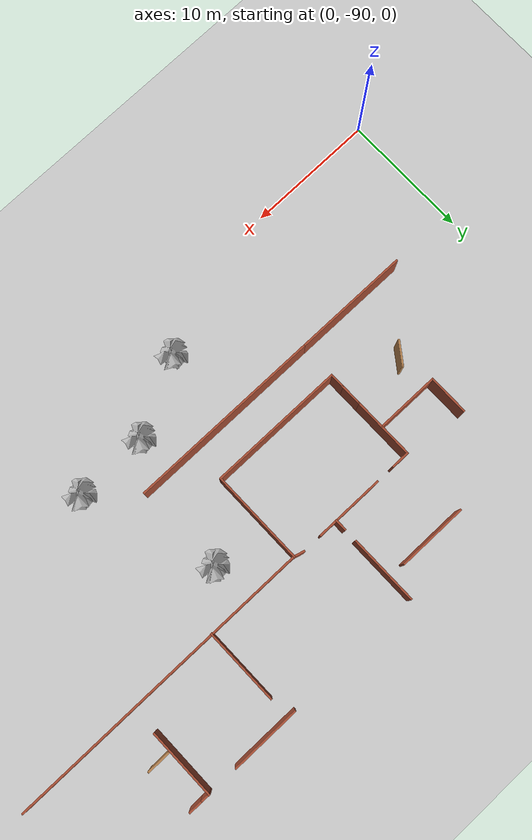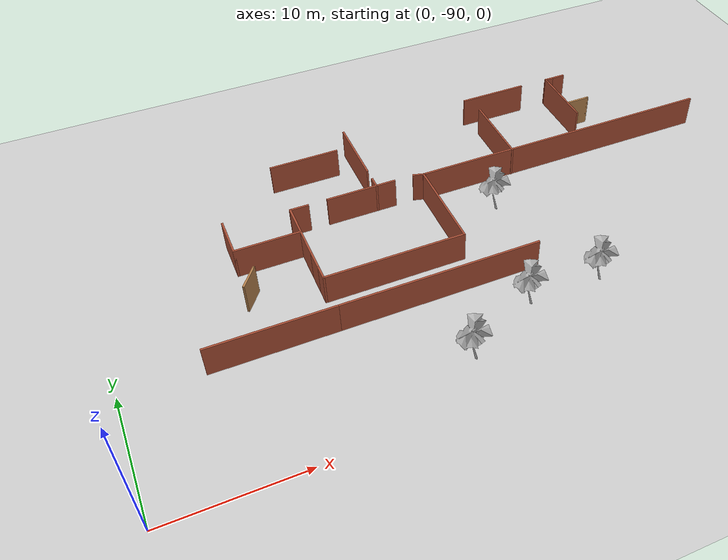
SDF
<sdf version="1.6">
 <world name="default">
  <model name="map_palace_v2_model_1_0">
   <pose>-3.1e-05 -55 0 0 -0 3.14</pose>
   <link name="Wall_10">
    <collision name="Wall_10_Collision">
     <geometry><box><size>7.5 0.15 2.5</size></box></geometry>
     <pose>0 0 1.25 0 -0 0</pose>
    </collision>
    <visual name="Wall_10_Visual">
     <pose>0 0 1.25 0 -0 0</pose>
     <geometry><box><size>7.5 0.15 2.5</size></box></geometry>
     <material>
      <script><uri>file://media/materials/scripts/gazebo.material</uri><name>Gazebo/Bricks</name></script>
      <ambient>1 1 1 1</ambient>
     </material>
     <meta><layer>0</layer></meta>
    </visual>
    <pose>-25.5193 18.9225 0 0 -0 -1.5708</pose>
   </link>
   <link name="Wall_11">
    <collision name="Wall_11_Collision">
     <geometry><box><size>24.75 0.15 2.5</size></box></geometry>
     <pose>0 0 1.25 0 -0 0</pose>
    </collision>
    <visual name="Wall_11_Visual">
     <pose>0 0 1.25 0 -0 0</pose>
     <geometry><box><size>24.75 0.15 2.5</size></box></geometry>
     <material>
      <script><uri>file://media/materials/scripts/gazebo.material</uri><name>Gazebo/Bricks</name></script>
      <ambient>1 1 1 1</ambient>
     </material>
     <meta><layer>0</layer></meta>
    </visual>
    <pose>-37.8193 15.2475 0 0 -0 3.14159</pose>
   </link>
   <link name="Wall_196">
    <collision name="Wall_196_Collision">
     <geometry><box><size>5.5 0.15 2.5</size></box></geometry>
     <pose>0 0 1.25 0 -0 0</pose>
    </collision>
    <visual name="Wall_196_Visual">
     <pose>0 0 1.25 0 -0 0</pose>
     <geometry><box><size>5.5 0.15 2.5</size></box></geometry>
     <material>
      <script><uri>file://media/materials/scripts/gazebo.material</uri><name>Gazebo/Bricks</name></script>
      <ambient>1 1 1 1</ambient>
     </material>
     <meta><layer>0</layer></meta>
    </visual>
    <pose>-17.7024 9.73922 0 0 -0 0</pose>
   </link>
   <link name="Wall_200">
    <collision name="Wall_200_Collision">
     <geometry><box><size>5 0.15 2.5</size></box></geometry>
     <pose>0 0 1.25 0 -0 0</pose>
    </collision>
    <visual name="Wall_200_Visual">
     <pose>0 0 1.25 0 -0 0</pose>
     <geometry><box><size>5 0.15 2.5</size></box></geometry>
     <material>
      <script><uri>file://media/materials/scripts/gazebo.material</uri><name>Gazebo/Bricks</name></script>
      <ambient>1 1 1 1</ambient>
     </material>
     <meta><layer>0</layer></meta>
    </visual>
    <pose>-12.4131 17.5809 0 0 -0 0</pose>
   </link>
   <link name="Wall_201">
    <collision name="Wall_201_Collision">
     <geometry><box><size>3.25 0.15 2.5</size></box></geometry>
     <pose>0 0 1.25 0 -0 0</pose>
    </collision>
    <visual name="Wall_201_Visual">
     <pose>0 0 1.25 0 -0 0</pose>
     <geometry><box><size>3.25 0.15 2.5</size></box></geometry>
     <material>
      <script><uri>file://media/materials/scripts/gazebo.material</uri><name>Gazebo/Bricks</name></script>
      <ambient>1 1 1 1</ambient>
     </material>
     <meta><layer>0</layer></meta>
    </visual>
    <pose>-9.98806 16.0309 0 0 -0 -1.5708</pose>
   </link>
   <link name="Wall_44">
    <collision name="Wall_44_Collision">
     <geometry><box><size>15.25 0.15 2.5</size></box></geometry>
     <pose>0 0 1.25 0 -0 0</pose>
    </collision>
    <visual name="Wall_44_Visual">
     <pose>0 0 1.25 0 -0 0</pose>
     <geometry><box><size>15.25 0.15 2.5</size></box></geometry>
     <material>
      <script><uri>file://media/materials/scripts/gazebo.material</uri><name>Gazebo/Bricks</name></script>
      <ambient>1 1 1 1</ambient>
     </material>
     <meta><layer>0</layer></meta>
    </visual>
    <pose>-22.4693 25.4475 0 0 -0 3.14159</pose>
   </link>
   <link name="Wall_51">
    <collision name="Wall_51_Collision">
     <geometry><box><size>1.25 0.15 2.5</size></box></geometry>
     <pose>0 0 1.25 0 -0 0</pose>
    </collision>
    <visual name="Wall_51_Visual">
     <pose>0 0 1.25 0 -0 0</pose>
     <geometry><box><size>1.25 0.15 2.5</size></box></geometry>
     <material>
      <script><uri>file://media/materials/scripts/gazebo.material</uri><name>Gazebo/Bricks</name></script>
      <ambient>1 1 1 1</ambient>
     </material>
     <meta><layer>0</layer></meta>
    </visual>
    <pose>-14.9193 22.0475 0 0 -0 -1.5708</pose>
   </link>
   <link name="Wall_52">
    <collision name="Wall_52_Collision">
     <geometry><box><size>1.75 0.15 2.5</size></box></geometry>
     <pose>0 0 1.25 0 -0 0</pose>
    </collision>
    <visual name="Wall_52_Visual">
     <pose>0 0 1.25 0 -0 0</pose>
     <geometry><box><size>1.75 0.15 2.5</size></box></geometry>
     <material>
      <script><uri>file://media/materials/scripts/gazebo.material</uri><name>Gazebo/Bricks</name></script>
      <ambient>1 1 1 1</ambient>
     </material>
     <meta><layer>0</layer></meta>
    </visual>
    <pose>-14.9193 20.6975 0 0 -0 -1.5708</pose>
   </link>
   <link name="Wall_53">
    <collision name="Wall_53_Collision">
     <geometry><box><size>5 0.15 2.5</size></box></geometry>
     <pose>0 0 1.25 0 -0 0</pose>
    </collision>
    <visual name="Wall_53_Visual">
     <pose>0 0 1.25 0 -0 0</pose>
     <geometry><box><size>5 0.15 2.5</size></box></geometry>
     <material>
      <script><uri>file://media/materials/scripts/gazebo.material</uri><name>Gazebo/Bricks</name></script>
      <ambient>1 1 1 1</ambient>
     </material>
     <meta><layer>0</layer></meta>
    </visual>
    <pose>-14.9193 17.4725 0 0 -0 -1.5708</pose>
   </link>
   <link name="Wall_54">
    <collision name="Wall_54_Collision">
     <geometry><box><size>1.5 0.15 2.5</size></box></geometry>
     <pose>0 0 1.25 0 -0 0</pose>
    </collision>
    <visual name="Wall_54_Visual">
     <pose>0 0 1.25 0 -0 0</pose>
     <geometry><box><size>1.5 0.15 2.5</size></box></geometry>
     <material>
      <script><uri>file://media/materials/scripts/gazebo.material</uri><name>Gazebo/Bricks</name></script>
      <ambient>1 1 1 1</ambient>
     </material>
     <meta><layer>0</layer></meta>
    </visual>
    <pose>-15.5943 15.0475 0 0 -0 3.14159</pose>
   </link>
   <link name="Wall_58">
    <collision name="Wall_58_Collision">
     <geometry><box><size>5.5 0.15 2.5</size></box></geometry>
     <pose>0 0 1.25 0 -0 0</pose>
    </collision>
    <visual name="Wall_58_Visual">
     <pose>0 0 1.25 0 -0 0</pose>
     <geometry><box><size>5.5 0.15 2.5</size></box></geometry>
     <material>
      <script><uri>file://media/materials/scripts/gazebo.material</uri><name>Gazebo/Bricks</name></script>
      <ambient>1 1 1 1</ambient>
     </material>
     <meta><layer>0</layer></meta>
    </visual>
    <pose>-20.5061 15.044 0 0 -0 3.14159</pose>
   </link>
   <link name="Wall_60">
    <collision name="Wall_60_Collision">
     <geometry><box><size>1 0.15 2.5</size></box></geometry>
     <pose>0 0 1.25 0 -0 0</pose>
    </collision>
    <visual name="Wall_60_Visual">
     <pose>0 0 1.25 0 -0 0</pose>
     <geometry><box><size>1 0.15 2.5</size></box></geometry>
     <material>
      <script><uri>file://media/materials/scripts/gazebo.material</uri><name>Gazebo/Bricks</name></script>
      <ambient>1 1 1 1</ambient>
     </material>
     <meta><layer>0</layer></meta>
    </visual>
    <pose>-25.1916 15.154 0 0 -0 2.87979</pose>
   </link>
   <link name="Wall_66">
    <collision name="Wall_66_Collision">
     <geometry><box><size>5.5 0.15 2.5</size></box></geometry>
     <pose>0 0 1.25 0 -0 0</pose>
    </collision>
    <visual name="Wall_66_Visual">
     <pose>0 0 1.25 0 -0 0</pose>
     <geometry><box><size>5.5 0.15 2.5</size></box></geometry>
     <material>
      <script><uri>file://media/materials/scripts/gazebo.material</uri><name>Gazebo/Bricks</name></script>
      <ambient>1 1 1 1</ambient>
     </material>
     <meta><layer>0</layer></meta>
    </visual>
    <pose>-21.7193 10.4225 0 0 -0 1.5708</pose>
   </link>
   <link name="Wall_68">
    <collision name="Wall_68_Collision">
     <geometry><box><size>1 0.15 2.5</size></box></geometry>
     <pose>0 0 1.25 0 -0 0</pose>
    </collision>
    <visual name="Wall_68_Visual">
     <pose>0 0 1.25 0 -0 0</pose>
     <geometry><box><size>1 0.15 2.5</size></box></geometry>
     <material>
      <script><uri>file://media/materials/scripts/gazebo.material</uri><name>Gazebo/Bricks</name></script>
      <ambient>1 1 1 1</ambient>
     </material>
     <meta><layer>0</layer></meta>
    </visual>
    <pose>-21.7193 14.6225 0 0 -0 1.5708</pose>
   </link>
   <link name="Wall_7">
    <collision name="Wall_7_Collision">
     <geometry><box><size>9.25 0.15 2.5</size></box></geometry>
     <pose>0 0 1.25 0 -0 0</pose>
    </collision>
    <visual name="Wall_7_Visual">
     <pose>0 0 1.25 0 -0 0</pose>
     <geometry><box><size>9.25 0.15 2.5</size></box></geometry>
     <material>
      <script><uri>file://media/materials/scripts/gazebo.material</uri><name>Gazebo/Bricks</name></script>
      <ambient>1 1 1 1</ambient>
     </material>
     <meta><layer>0</layer></meta>
    </visual>
    <pose>-10.3693 25.4475 0 0 -0 3.14159</pose>
   </link>
   <link name="Wall_70">
    <collision name="Wall_70_Collision">
     <geometry><box><size>6 0.15 2.5</size></box></geometry>
     <pose>0 0 1.25 0 -0 0</pose>
    </collision>
    <visual name="Wall_70_Visual">
     <pose>0 0 1.25 0 -0 0</pose>
     <geometry><box><size>6 0.15 2.5</size></box></geometry>
     <material>
      <script><uri>file://media/materials/scripts/gazebo.material</uri><name>Gazebo/Bricks</name></script>
      <ambient>1 1 1 1</ambient>
     </material>
     <meta><layer>0</layer></meta>
    </visual>
    <pose>-33.1638 12.3617 0 0 -0 -1.5708</pose>
   </link>
   <link name="Wall_76">
    <collision name="Wall_76_Collision">
     <geometry><box><size>5.5 0.15 2.5</size></box></geometry>
     <pose>0 0 1.25 0 -0 0</pose>
    </collision>
    <visual name="Wall_76_Visual">
     <pose>0 0 1.25 0 -0 0</pose>
     <geometry><box><size>5.5 0.15 2.5</size></box></geometry>
     <material>
      <script><uri>file://media/materials/scripts/gazebo.material</uri><name>Gazebo/Bricks</name></script>
      <ambient>1 1 1 1</ambient>
     </material>
     <meta><layer>0</layer></meta>
    </visual>
    <pose>-35.2443 7.74746 0 0 -0 3.14159</pose>
   </link>
   <link name="Wall_81">
    <collision name="Wall_81_Collision">
     <geometry><box><size>5.5 0.15 2.5</size></box></geometry>
     <pose>0 0 1.25 0 -0 0</pose>
    </collision>
    <visual name="Wall_81_Visual">
     <pose>0 0 1.25 0 -0 0</pose>
     <geometry><box><size>5.5 0.15 2.5</size></box></geometry>
     <material>
      <script><uri>file://media/materials/scripts/gazebo.material</uri><name>Gazebo/Bricks</name></script>
      <ambient>1 1 1 1</ambient>
     </material>
     <meta><layer>0</layer></meta>
    </visual>
    <pose>-40.3693 10.4225 0 0 -0 1.5708</pose>
   </link>
   <link name="Wall_85">
    <collision name="Wall_85_Collision">
     <geometry><box><size>0.740436 0.15 2.5</size></box></geometry>
     <pose>0 0 1.25 0 -0 0</pose>
    </collision>
    <visual name="Wall_85_Visual">
     <pose>0 0 1.25 0 -0 0</pose>
     <geometry><box><size>0.740436 0.15 2.5</size></box></geometry>
     <material>
      <script><uri>file://media/materials/scripts/gazebo.material</uri><name>Gazebo/Bricks</name></script>
      <ambient>1 1 1 1</ambient>
     </material>
     <meta><layer>0</layer></meta>
    </visual>
    <pose>-40.6644 7.75724 0 0 -0 3.10847</pose>
   </link>
   <link name="Wall_9">
    <collision name="Wall_9_Collision">
     <geometry><box><size>10.75 0.15 2.5</size></box></geometry>
     <pose>0 0 1.25 0 -0 0</pose>
    </collision>
    <visual name="Wall_9_Visual">
     <pose>0 0 1.25 0 -0 0</pose>
     <geometry><box><size>10.75 0.15 2.5</size></box></geometry>
     <material>
      <script><uri>file://media/materials/scripts/gazebo.material</uri><name>Gazebo/Bricks</name></script>
      <ambient>1 1 1 1</ambient>
     </material>
     <meta><layer>0</layer></meta>
    </visual>
    <pose>-20.2193 22.5975 0 0 -0 3.14159</pose>
   </link>
   <link name="Wall_92">
    <collision name="Wall_92_Collision">
     <geometry><box><size>1.25 0.15 2.5</size></box></geometry>
     <pose>0 0 1.25 0 -0 0</pose>
    </collision>
    <visual name="Wall_92_Visual">
     <pose>0 0 1.25 0 -0 0</pose>
     <geometry><box><size>1.25 0.15 2.5</size></box></geometry>
     <material>
      <script><uri>file://media/materials/scripts/gazebo.material</uri><name>Gazebo/Bricks</name></script>
      <ambient>1 1 1 1</ambient>
     </material>
     <meta><layer>0</layer></meta>
    </visual>
    <pose>-41.4995 7.75713 0 0 -0 3.14159</pose>
   </link>
   <static>1</static>
  </model>
  <model name="tree3_clone">
   <link name="link_1">
    <inertial>
     <mass>1</mass>
     <inertia>
      <ixx>0.166667</ixx>
      <ixy>0</ixy>
      <ixz>0</ixz>
      <iyy>0.166667</iyy>
      <iyz>0</iyz>
      <izz>0.166667</izz>
     </inertia>
    </inertial>
    <visual name="visual">
     <geometry><mesh><uri>model://tree3/Palmera.obj</uri><scale>1 1 1</scale></mesh></geometry>
    </visual>
    <collision name="collision">
     <geometry><mesh><uri>model://tree3/Palmera.obj</uri><scale>1 1 1</scale></mesh></geometry>
     <surface>
      <friction>
       <ode><mu>1</mu><mu2>1</mu2><fdir1>0 0 0</fdir1><slip1>0</slip1><slip2>0</slip2></ode>
       <torsional>
        <coefficient>1</coefficient>
        <patch_radius>0</patch_radius>
        <surface_radius>0</surface_radius>
        <use_patch_radius>1</use_patch_radius>
        <ode><slip>0</slip></ode>
       </torsional>
      </friction>
      <bounce><restitution_coefficient>0</restitution_coefficient><threshold>1e+06</threshold></bounce>
      <contact>
       <collide_without_contact>0</collide_without_contact>
       <collide_without_contact_bitmask>1</collide_without_contact_bitmask>
       <collide_bitmask>1</collide_bitmask>
       <ode>
        <soft_cfm>0</soft_cfm>
        <soft_erp>0.2</soft_erp>
        <kp>1e+13</kp>
        <kd>1</kd>
        <max_vel>0.01</max_vel>
        <min_depth>0</min_depth>
       </ode>
       <bullet>
        <split_impulse>1</split_impulse>
        <split_impulse_penetration_threshold>-0.01</split_impulse_penetration_threshold>
        <soft_cfm>0</soft_cfm>
        <soft_erp>0.2</soft_erp>
        <kp>1e+13</kp>
        <kd>1</kd>
       </bullet>
      </contact>
     </surface>
    </collision>
   </link>
   <static>1</static>
   <pose>30.1771 -73.6154 0 0 -0 0</pose>
  </model>
  <model name="tree3_clone_0">
   <link name="link_1">
    <inertial>
     <mass>1</mass>
     <inertia>
      <ixx>0.166667</ixx>
      <ixy>0</ixy>
      <ixz>0</ixz>
      <iyy>0.166667</iyy>
      <iyz>0</iyz>
      <izz>0.166667</izz>
     </inertia>
    </inertial>
    <visual name="visual">
     <geometry><mesh><uri>model://tree3/Palmera.obj</uri><scale>1 1 1</scale></mesh></geometry>
    </visual>
    <collision name="collision">
     <geometry><mesh><uri>model://tree3/Palmera.obj</uri><scale>1 1 1</scale></mesh></geometry>
     <surface>
      <friction>
       <ode><mu>1</mu><mu2>1</mu2><fdir1>0 0 0</fdir1><slip1>0</slip1><slip2>0</slip2></ode>
       <torsional>
        <coefficient>1</coefficient>
        <patch_radius>0</patch_radius>
        <surface_radius>0</surface_radius>
        <use_patch_radius>1</use_patch_radius>
        <ode><slip>0</slip></ode>
       </torsional>
      </friction>
      <bounce><restitution_coefficient>0</restitution_coefficient><threshold>1e+06</threshold></bounce>
      <contact>
       <collide_without_contact>0</collide_without_contact>
       <collide_without_contact_bitmask>1</collide_without_contact_bitmask>
       <collide_bitmask>1</collide_bitmask>
       <ode>
        <soft_cfm>0</soft_cfm>
        <soft_erp>0.2</soft_erp>
        <kp>1e+13</kp>
        <kd>1</kd>
        <max_vel>0.01</max_vel>
        <min_depth>0</min_depth>
       </ode>
       <bullet>
        <split_impulse>1</split_impulse>
        <split_impulse_penetration_threshold>-0.01</split_impulse_penetration_threshold>
        <soft_cfm>0</soft_cfm>
        <soft_erp>0.2</soft_erp>
        <kp>1e+13</kp>
        <kd>1</kd>
       </bullet>
      </contact>
     </surface>
    </collision>
   </link>
   <static>1</static>
   <pose>33.5275 -83.4734 0 0 -0 0</pose>
  </model>
  <model name="tree3_clone_2">
   <link name="link_1">
    <inertial>
     <mass>1</mass>
     <inertia>
      <ixx>0.166667</ixx>
      <ixy>0</ixy>
      <ixz>0</ixz>
      <iyy>0.166667</iyy>
      <iyz>0</iyz>
      <izz>0.166667</izz>
     </inertia>
    </inertial>
    <visual name="visual">
     <geometry><mesh><uri>model://tree3/Palmera.obj</uri><scale>1 1 1</scale></mesh></geometry>
    </visual>
    <collision name="collision">
     <geometry><mesh><uri>model://tree3/Palmera.obj</uri><scale>1 1 1</scale></mesh></geometry>
     <surface>
      <friction>
       <ode><mu>1</mu><mu2>1</mu2><fdir1>0 0 0</fdir1><slip1>0</slip1><slip2>0</slip2></ode>
       <torsional>
        <coefficient>1</coefficient>
        <patch_radius>0</patch_radius>
        <surface_radius>0</surface_radius>
        <use_patch_radius>1</use_patch_radius>
        <ode><slip>0</slip></ode>
       </torsional>
      </friction>
      <bounce><restitution_coefficient>0</restitution_coefficient><threshold>1e+06</threshold></bounce>
      <contact>
       <collide_without_contact>0</collide_without_contact>
       <collide_without_contact_bitmask>1</collide_without_contact_bitmask>
       <collide_bitmask>1</collide_bitmask>
       <ode>
        <soft_cfm>0</soft_cfm>
        <soft_erp>0.2</soft_erp>
        <kp>1e+13</kp>
        <kd>1</kd>
        <max_vel>0.01</max_vel>
        <min_depth>0</min_depth>
       </ode>
       <bullet>
        <split_impulse>1</split_impulse>
        <split_impulse_penetration_threshold>-0.01</split_impulse_penetration_threshold>
        <soft_cfm>0</soft_cfm>
        <soft_erp>0.2</soft_erp>
        <kp>1e+13</kp>
        <kd>1</kd>
       </bullet>
      </contact>
     </surface>
    </collision>
   </link>
   <static>1</static>
   <pose>22.2578 -86.4072 0 0 -0 0</pose>
  </model>
  <model name="tree3_clone_2">
   <link name="link_1">
    <inertial>
     <mass>1</mass>
     <inertia>
      <ixx>0.166667</ixx>
      <ixy>0</ixy>
      <ixz>0</ixz>
      <iyy>0.166667</iyy>
      <iyz>0</iyz>
      <izz>0.166667</izz>
     </inertia>
    </inertial>
    <visual name="visual">
     <geometry><mesh><uri>model://tree3/Palmera.obj</uri><scale>1 1 1</scale></mesh></geometry>
    </visual>
    <collision name="collision">
     <geometry><mesh><uri>model://tree3/Palmera.obj</uri><scale>1 1 1</scale></mesh></geometry>
     <surface>
      <friction>
       <ode><mu>1</mu><mu2>1</mu2><fdir1>0 0 0</fdir1><slip1>0</slip1><slip2>0</slip2></ode>
       <torsional>
        <coefficient>1</coefficient>
        <patch_radius>0</patch_radius>
        <surface_radius>0</surface_radius>
        <use_patch_radius>1</use_patch_radius>
        <ode><slip>0</slip></ode>
       </torsional>
      </friction>
      <bounce><restitution_coefficient>0</restitution_coefficient><threshold>1e+06</threshold></bounce>
      <contact>
       <collide_without_contact>0</collide_without_contact>
       <collide_without_contact_bitmask>1</collide_without_contact_bitmask>
       <collide_bitmask>1</collide_bitmask>
       <ode>
        <soft_cfm>0</soft_cfm>
        <soft_erp>0.2</soft_erp>
        <kp>1e+13</kp>
        <kd>1</kd>
        <max_vel>0.01</max_vel>
        <min_depth>0</min_depth>
       </ode>
       <bullet>
        <split_impulse>1</split_impulse>
        <split_impulse_penetration_threshold>-0.01</split_impulse_penetration_threshold>
        <soft_cfm>0</soft_cfm>
        <soft_erp>0.2</soft_erp>
        <kp>1e+13</kp>
        <kd>1</kd>
       </bullet>
      </contact>
     </surface>
    </collision>
   </link>
   <static>1</static>
   <pose>22.2578 -86.4072 0 0 -0 0</pose>
  </model>
  <model name="tree3_clone_2">
   <link name="link_1">
    <inertial>
     <mass>1</mass>
     <inertia>
      <ixx>0.166667</ixx>
      <ixy>0</ixy>
      <ixz>0</ixz>
      <iyy>0.166667</iyy>
      <iyz>0</iyz>
      <izz>0.166667</izz>
     </inertia>
    </inertial>
    <visual name="visual">
     <geometry><mesh><uri>model://tree3/Palmera.obj</uri><scale>1 1 1</scale></mesh></geometry>
    </visual>
    <collision name="collision">
     <geometry><mesh><uri>model://tree3/Palmera.obj</uri><scale>1 1 1</scale></mesh></geometry>
     <surface>
      <friction>
       <ode><mu>1</mu><mu2>1</mu2><fdir1>0 0 0</fdir1><slip1>0</slip1><slip2>0</slip2></ode>
       <torsional>
        <coefficient>1</coefficient>
        <patch_radius>0</patch_radius>
        <surface_radius>0</surface_radius>
        <use_patch_radius>1</use_patch_radius>
        <ode><slip>0</slip></ode>
       </torsional>
      </friction>
      <bounce><restitution_coefficient>0</restitution_coefficient><threshold>1e+06</threshold></bounce>
      <contact>
       <collide_without_contact>0</collide_without_contact>
       <collide_without_contact_bitmask>1</collide_without_contact_bitmask>
       <collide_bitmask>1</collide_bitmask>
       <ode>
        <soft_cfm>0</soft_cfm>
        <soft_erp>0.2</soft_erp>
        <kp>1e+13</kp>
        <kd>1</kd>
        <max_vel>0.01</max_vel>
        <min_depth>0</min_depth>
       </ode>
       <bullet>
        <split_impulse>1</split_impulse>
        <split_impulse_penetration_threshold>-0.01</split_impulse_penetration_threshold>
        <soft_cfm>0</soft_cfm>
        <soft_erp>0.2</soft_erp>
        <kp>1e+13</kp>
        <kd>1</kd>
       </bullet>
      </contact>
     </surface>
    </collision>
   </link>
   <static>1</static>
   <pose>22.2578 -86.4072 0 0 -0 0</pose>
  </model>
  <model name="tree3_clone_6">
   <link name="link_1">
    <inertial>
     <mass>1</mass>
     <inertia>
      <ixx>0.166667</ixx>
      <ixy>0</ixy>
      <ixz>0</ixz>
      <iyy>0.166667</iyy>
      <iyz>0</iyz>
      <izz>0.166667</izz>
     </inertia>
    </inertial>
    <visual name="visual">
     <geometry><mesh><uri>model://tree3/Palmera.obj</uri><scale>1 1 1</scale></mesh></geometry>
    </visual>
    <collision name="collision">
     <geometry><mesh><uri>model://tree3/Palmera.obj</uri><scale>1 1 1</scale></mesh></geometry>
     <surface>
      <friction>
       <ode><mu>1</mu><mu2>1</mu2><fdir1>0 0 0</fdir1><slip1>0</slip1><slip2>0</slip2></ode>
       <torsional>
        <coefficient>1</coefficient>
        <patch_radius>0</patch_radius>
        <surface_radius>0</surface_radius>
        <use_patch_radius>1</use_patch_radius>
        <ode><slip>0</slip></ode>
       </torsional>
      </friction>
      <bounce><restitution_coefficient>0</restitution_coefficient><threshold>1e+06</threshold></bounce>
      <contact>
       <collide_without_contact>0</collide_without_contact>
       <collide_without_contact_bitmask>1</collide_without_contact_bitmask>
       <collide_bitmask>1</collide_bitmask>
       <ode>
        <soft_cfm>0</soft_cfm>
        <soft_erp>0.2</soft_erp>
        <kp>1e+13</kp>
        <kd>1</kd>
        <max_vel>0.01</max_vel>
        <min_depth>0</min_depth>
       </ode>
       <bullet>
        <split_impulse>1</split_impulse>
        <split_impulse_penetration_threshold>-0.01</split_impulse_penetration_threshold>
        <soft_cfm>0</soft_cfm>
        <soft_erp>0.2</soft_erp>
        <kp>1e+13</kp>
        <kd>1</kd>
       </bullet>
      </contact>
     </surface>
    </collision>
   </link>
   <static>1</static>
   <pose>27.9042 -83.5489 0 0 -0 0</pose>
  </model>
  <model name="wall_5">
   <pose>10.2645 -75.4431 0 0 -0 0.937201</pose>
   <link name="Wall_2">
    <collision name="Wall_2_Collision">
     <geometry><box><size>2 0.15 2.5</size></box></geometry>
     <pose>0 0 1.25 0 -0 0</pose>
    </collision>
    <visual name="Wall_2_Visual">
     <pose>0 0 1.25 0 -0 0</pose>
     <geometry><box><size>2 0.15 2.5</size></box></geometry>
     <material>
      <script><uri>file://media/materials/scripts/gazebo.material</uri><name>Gazebo/Wood</name></script>
      <ambient>1 1 1 1</ambient>
     </material>
     <meta><layer>0</layer></meta>
    </visual>
    <pose>-0.005 -0 0 0 -0 0</pose>
   </link>
   <link name="Wall_3">
    <collision name="Wall_3_Collision">
     <geometry><box><size>0.16 0.15 2.5</size></box></geometry>
     <pose>0 0 1.25 0 -0 0</pose>
    </collision>
    <visual name="Wall_3_Visual">
     <pose>0 0 1.25 0 -0 0</pose>
     <geometry><box><size>0.16 0.15 2.5</size></box></geometry>
     <material>
      <script><uri>file://media/materials/scripts/gazebo.material</uri><name>Gazebo/Wood</name></script>
      <ambient>1 1 1 1</ambient>
     </material>
     <meta><layer>0</layer></meta>
    </visual>
    <pose>0.925 0 0 0 -0 0</pose>
   </link>
   <static>1</static>
  </model>
  <model name="wall_8">
   <pose>41.3334 -66.5977 0 0 -0 0</pose>
   <link name="Wall_2">
    <collision name="Wall_2_Collision">
     <geometry><box><size>2 0.15 2.5</size></box></geometry>
     <pose>0 0 1.25 0 -0 0</pose>
    </collision>
    <visual name="Wall_2_Visual">
     <pose>0 0 1.25 0 -0 0</pose>
     <geometry><box><size>2 0.15 2.5</size></box></geometry>
     <material>
      <script><uri>file://media/materials/scripts/gazebo.material</uri><name>Gazebo/Wood</name></script>
      <ambient>1 1 1 1</ambient>
     </material>
     <meta><layer>0</layer></meta>
    </visual>
    <pose>-0.005 -0 0 0 -0 0</pose>
   </link>
   <link name="Wall_3">
    <collision name="Wall_3_Collision">
     <geometry><box><size>0.16 0.15 2.5</size></box></geometry>
     <pose>0 0 1.25 0 -0 0</pose>
    </collision>
    <visual name="Wall_3_Visual">
     <pose>0 0 1.25 0 -0 0</pose>
     <geometry><box><size>0.16 0.15 2.5</size></box></geometry>
     <material>
      <script><uri>file://media/materials/scripts/gazebo.material</uri><name>Gazebo/Wood</name></script>
      <ambient>1 1 1 1</ambient>
     </material>
     <meta><layer>0</layer></meta>
    </visual>
    <pose>0.925 0 0 0 -0 0</pose>
   </link>
   <static>1</static>
  </model>
  <model name="ground_plane">
   <static>1</static>
   <link name="link">
    <collision name="collision">
     <geometry><plane><normal>0 0 1</normal><size>100 100</size></plane></geometry>
     <surface>
      <contact><collide_bitmask>65535</collide_bitmask></contact>
      <friction><ode><mu>100</mu><mu2>50</mu2></ode></friction>
     </surface>
    </collision>
    <visual name="visual">
     <cast_shadows>0</cast_shadows>
     <geometry><plane><normal>0 0 1</normal><size>100 100</size></plane></geometry>
     <material>
      <script><uri>file://media/materials/scripts/gazebo.material</uri><name>Gazebo/Grey</name></script>
     </material>
    </visual>
   </link>
   <pose>9.31394 52.073 0 0 -0 0</pose>
  </model>
 </world>
</sdf>
